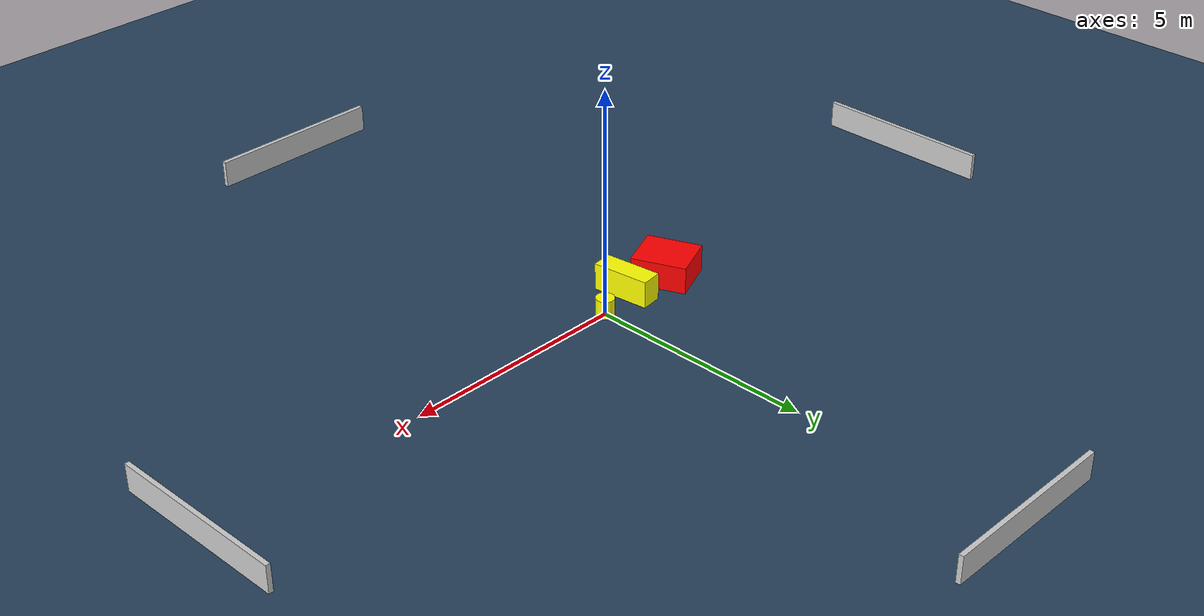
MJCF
<?xml version="1.0" ?>
<mujoco model="generated_environment">
  <option timestep="0.01" integrator="RK4" cone="elliptic"/>
  <default>
    <geom density="1"/>
  </default>
  <asset>
    <texture builtin="gradient" height="3072" name="skybox" rgb1="0.3 0.5 0.7" rgb2="0 0 0" type="skybox" width="512"/>
    <texture builtin="checker" height="300" name="groundplane" rgb1="0.2 0.3 0.4" rgb2="0.1 0.2 0.3" type="2d" width="300"/>
    <material name="groundplane" reflectance="0.2" texrepeat="5 5" texture="groundplane"/>
  </asset>
  <worldbody>
    <light dir="0 0 -1" directional="true" pos="0 0 1.5"/>
    <geom condim="3" friction="0.5 0.005 0.001" material="groundplane" name="floor" pos="0 0 0" size="0 0 0.05" type="plane"/>
    <body name="walls">
      <geom name="wall_1" condim="4" pos="-10.0 0.0 0.3" rgba="0.800000011920929 0.800000011920929 0.800000011920929 1.0" size="0.05 2.0 0.3" type="box"/>
      <geom name="wall_2" condim="4" pos="10.0 0.0 0.3" rgba="0.800000011920929 0.800000011920929 0.800000011920929 1.0" size="0.05 2.0 0.3" type="box"/>
      <geom name="wall_3" condim="4" pos="0.0 -10.0 0.3" rgba="0.800000011920929 0.800000011920929 0.800000011920929 1.0" size="2.0 0.05 0.3" type="box"/>
      <geom name="wall_4" condim="4" pos="0.0 10.0 0.3" rgba="0.800000011920929 0.800000011920929 0.800000011920929 1.0" size="2.0 0.05 0.3" type="box"/>
    </body>
    <body name="robot">
      <joint name="joint_x" type="slide" pos="0 0 0" axis="1 0 0"/>
      <joint name="joint_y" type="slide" pos="0 0 0" axis="0 1 0"/>
      <geom name="robot" type="cylinder" pos="0.0 0.0 0.2" size="0.2 0.2 0.0" mass="5.0" friction="1.0 0.005 0.0001" condim="4" rgba="1.0 1.0 0.0 1.0"/>
    </body>
    <body name="obstacle_1_movable">
      <geom name="obstacle_1_movable" condim="4" pos="-0.8809131717874152 -0.23734801078734533 0.3" euler="0 0 7.12898038982174" friction="0.0 0.005 0.001" rgba="1.0 1.0 0.0 1.0" size="0.23148026013257128 0.6357365170177237 0.3" type="box" mass="0.1"/>
      <joint type="free"/>
    </body>
    <body name="obstacle_2_static">
      <geom name="obstacle_2_static" condim="4" pos="-1.9514118965787024 -0.10741594241960141 0.3" euler="0 0 202.5701519491833" friction="0.0 0.005 0.001" rgba="1.0 0.0 0.0 1.0" size="0.5195782861708927 0.6035483324223596 0.3" type="box"/>
    </body>
  </worldbody>
  <actuator>
    <motor name="actuator_x" joint="joint_x" gear="1" ctrlrange="-1 1"/>
    <motor name="actuator_y" joint="joint_y" gear="1" ctrlrange="-1 1"/>
  </actuator>
</mujoco>
